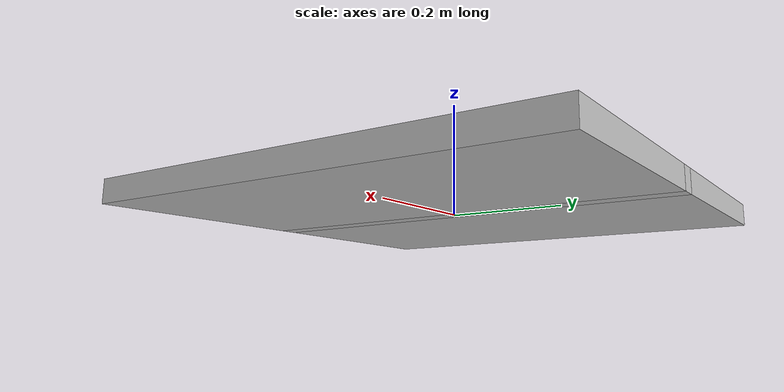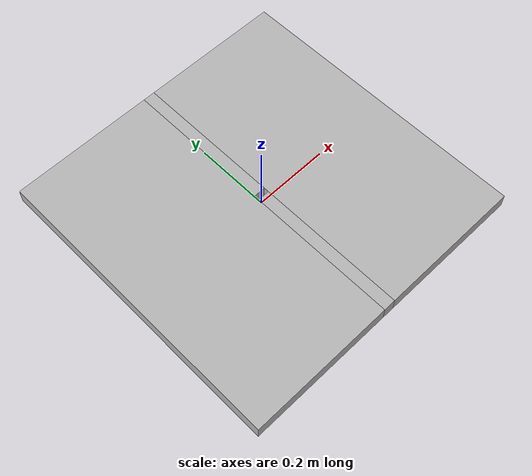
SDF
<?xml version="1.0" ?>
<sdf version="1.6">
  <model name="hole_block">
    <static>true</static>

    <!-- Overall plate size -->
    <!-- Hole size: 0.032 (x) × 0.014 (y) -->

    <!-- Derived values -->
    <!-- Half plate width = 0.40 -->
    <!-- Half plate height = 0.40 -->
    <!-- Half hole width = 0.016 -->
    <!-- Half hole height = 0.007 -->

    <!-- Left block -->
    <link name="left_block">
      <pose>-0.208 0 0.02 0 0 0</pose>
      <collision name="collision">
        <geometry>
          <box>
            <size>0.384 0.80 0.04</size>
          </box>
        </geometry>
      </collision>
      <visual name="visual">
        <geometry>
          <box>
            <size>0.384 0.80 0.04</size>
          </box>
        </geometry>
      </visual>
    </link>

    <!-- Right block -->
    <link name="right_block">
      <pose>0.208 0 0.02 0 0 0</pose>
      <collision name="collision">
        <geometry>
          <box>
            <size>0.384 0.80 0.04</size>
          </box>
        </geometry>
      </collision>
      <visual name="visual">
        <geometry>
          <box>
            <size>0.384 0.80 0.04</size>
          </box>
        </geometry>
      </visual>
    </link>

    <!-- Top block -->
    <link name="top_block">
      <pose>0 0.2035 0.02 0 0 0</pose>
      <collision name="collision">
        <geometry>
          <box>
            <size>0.032 0.393 0.04</size>
          </box>
        </geometry>
      </collision>
      <visual name="visual">
        <geometry>
          <box>
            <size>0.032 0.393 0.04</size>
          </box>
        </geometry>
      </visual>
    </link>

    <!-- Bottom block -->
    <link name="bottom_block">
      <pose>0 -0.2035 0.02 0 0 0</pose>
      <collision name="collision">
        <geometry>
          <box>
            <size>0.032 0.393 0.04</size>
          </box>
        </geometry>
      </collision>
      <visual name="visual">
        <geometry>
          <box>
            <size>0.032 0.393 0.04</size>
          </box>
        </geometry>
      </visual>
    </link>

  </model>
</sdf>
